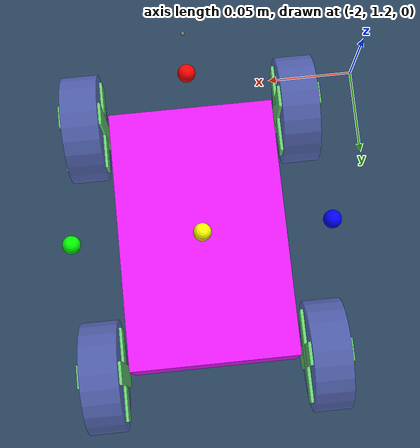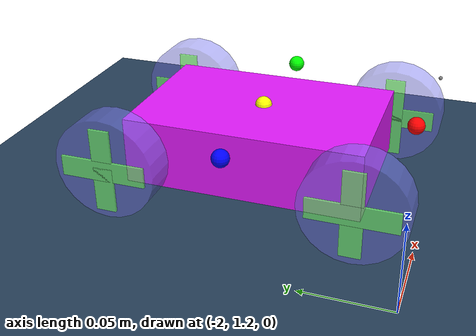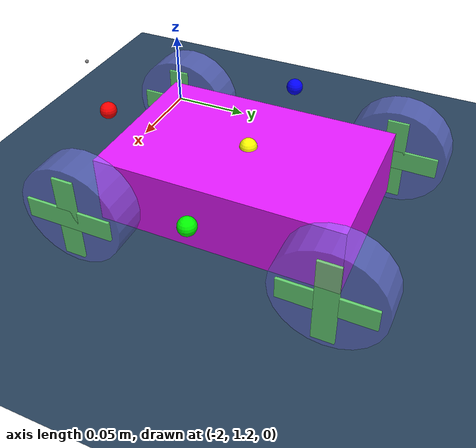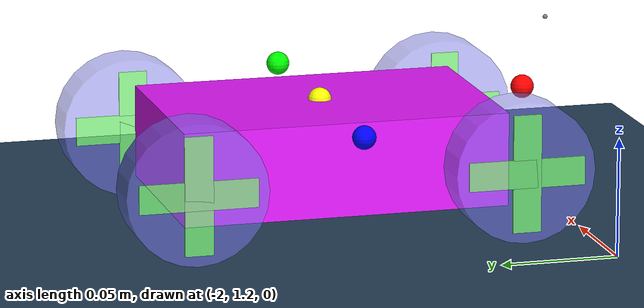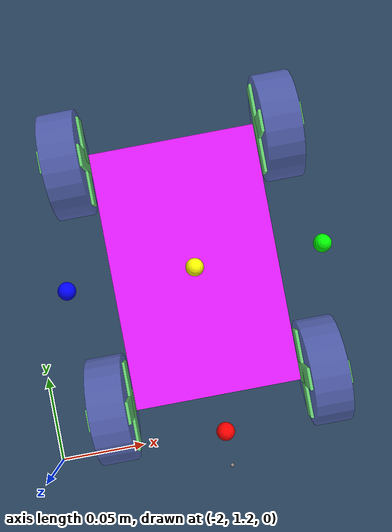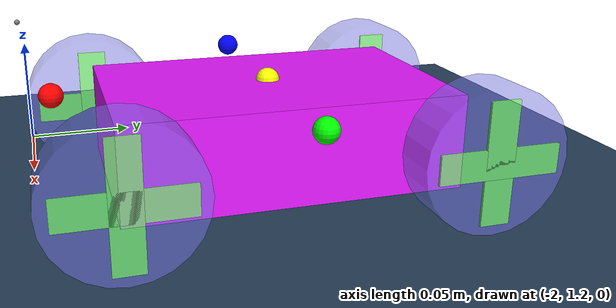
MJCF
<mujoco>
  <compiler autolimits="true"/>

  <asset>
    <texture name="grid" type="2d" builtin="checker" width="512" height="512" rgb1=".1 .2 .3" rgb2=".2 .3 .4"/>
    <material name="grid" texture="grid" texrepeat="1 1" texuniform="true" reflectance=".2"/>

  </asset>

  <default>
    <joint damping=".001" />
    <default class="decor">
      <site type="box" rgba=".5 1 .5 0.8"/>
    </default>
    <default class="wheel">
      <geom type="cylinder" size=".03 .01" rgba=".5 .5 1 0.5" friction="1.0 0.005 0.0001"/>
    </default>
  </default>

  <worldbody>
    <geom type="plane" size="5 5 .01" material="grid"/>
    <body name="car" pos="-1.9 1.3 .03" euler="0 0 -90" >

       <!-- Камера, следящая за телом -->
      <site name="camera_site" pos="0.1 0 0.05" euler="0 15 0" size="0.001"/>
      <light name="top light" pos="0 0 2" mode="trackcom" diffuse=".4 .4 .4"/>
      <geom name="chasis" type="box" size="0.07 0.045 0.02" rgba="0.9 0.1 1 0.9"/>

      <body name="back_left_wheel" pos="-.07 .06 0" zaxis="0 1 0" >
        <joint name="back_left"  type="hinge" axis="0 0 1"/>
        <geom class="wheel"/>
        <geom type="sphere" size="0.001" mass="0.001" rgba="0 0 0 0"/>

        <site class="decor" size=".006 .025 .0115"/>
        <site class="decor" size=".025 .006 .0115"/>
      </body>
      <body name="back_right_wheel" pos="-.07 -.06 0" zaxis="0 1 0">
        <joint name="back_right"  type="hinge" axis="0 0 1"/>
        <geom class="wheel"/>
        <geom type="sphere" size="0.001" mass="0.001" rgba="0 0 0 0"/>

        <site class="decor" size=".006 .025 .0115"/>
        <site class="decor" size=".025 .006 .0115"/>
      </body>

      <!-- FRONT LEFT WHEEL with steering -->
      <body name="front_left_caster" pos=".07 .06 0">
       <!-- Добавляем маленький невидимый geom для массы -->
        <geom type="sphere" size="0.001" mass="0.001" rgba="0 0 0 0"/>
        <!-- Поворот влево/вправо (рулевое управление) -->
        <joint name="turn_front_left" range="-30 45" type="hinge" axis="0 0 1"/>

        <body name="front_left_wheel" pos="0 0 0" zaxis="0 1 0">
          <!-- Вращение колеса -->
          <joint name="front_left" type="hinge" axis="0 0 1"/>
          <geom class="wheel"/>
          <site class="decor" size=".006 .025 .0115"/>
          <site class="decor" size=".025 .006 .0115"/>
        </body>
      </body>

      <!-- FRONT RIGHT WHEEL with steering -->
      <body name="front_right_caster" pos=".07 -.06 0">
        <geom type="sphere" size="0.001" mass="0.001" rgba="0 0 0 0"/>

        <!-- Поворот вправо/влево -->
        <joint name="turn_front_right" range="-45 30"  type="hinge" axis="0 0 1"/>

        <body name="front_right_wheel" pos="0 0 0" zaxis="0 1 0">
          <!-- Вращение колеса -->
          <joint name="front_right" type="hinge" axis="0 0 1"/>
          <geom class="wheel"/>
          <site class="decor" size=".006 .025 .0115"/>
          <site class="decor" size=".025 .006 .0115"/>
        </body>
      </body>

    <camera name="front_cam" mode="fixed" pos="0.1 0 0.2" euler="0 -50 270" fovy="120"/>

    <!-- Новый site для IMU -->
    <site name="imu" pos="0 0 0.02" size="0.005" rgba="1 1 0 1"/>
    <!-- Сенсоры расстояния / касания -->
    <site name="sensor_front" pos="0.09 0 0.02" size="0.005" rgba="1 0 0 1"/>
    <site name="sensor_left"  pos="0 0.07 0.02" size="0.005" rgba="0 1 0 1"/>
    <site name="sensor_right" pos="0 -0.07 0.02" size="0.005" rgba="0 0 1 1"/>

    </body>
  </worldbody>

  <tendon>
    <fixed name="forward">
      <joint joint="front_left" coef=".5"/>
      <joint joint="front_right" coef=".5"/>
    </fixed>
    <fixed name="turn">
      <joint joint="turn_front_left" coef="1"/>
      <joint joint="turn_front_right" coef="1"/>
    </fixed>

  </tendon>

  <actuator>
    <motor name="forward" tendon="forward" ctrlrange="-100 100"/>
  </actuator>

   <sensor>
    <!-- Датчики нагрузки на двигатели -->
    <jointactuatorfrc name="right" joint="back_right"/>
    <jointactuatorfrc name="left" joint="back_left"/>

    <!-- Гироскоп -->
    <gyro name="gyro" site="imu"/>

    <!-- Акселерометр -->
    <accelerometer name="accel" site="imu"/>

    <!-- Лазерные дальномеры -->
    <rangefinder name="range_front" site="sensor_front"/>
    <rangefinder name="range_left" site="sensor_left"/>
    <rangefinder name="range_right" site="sensor_right"/>

    <!-- Сенсоры контакта (тач-сенсоры) -->
    <touch name="touch_front" site="sensor_front"/>
    <touch name="touch_left" site="sensor_left"/>
    <touch name="touch_right" site="sensor_right"/>

   </sensor>

<visual>
  <global offwidth="640" offheight="480"/>
</visual>

</mujoco>
